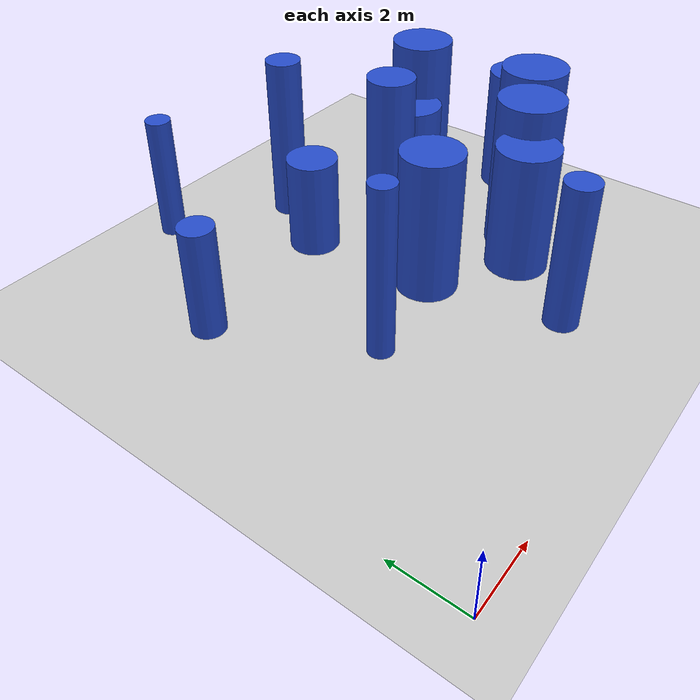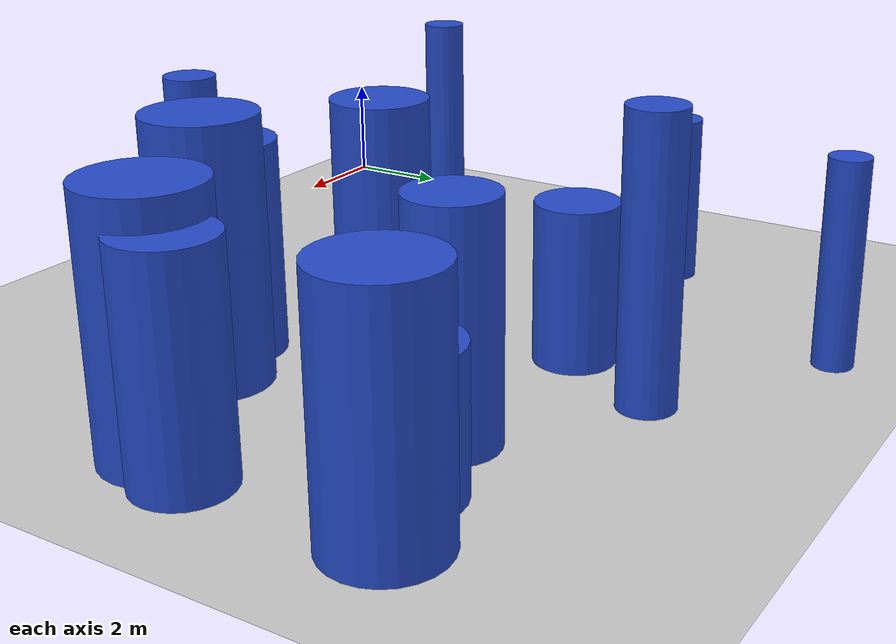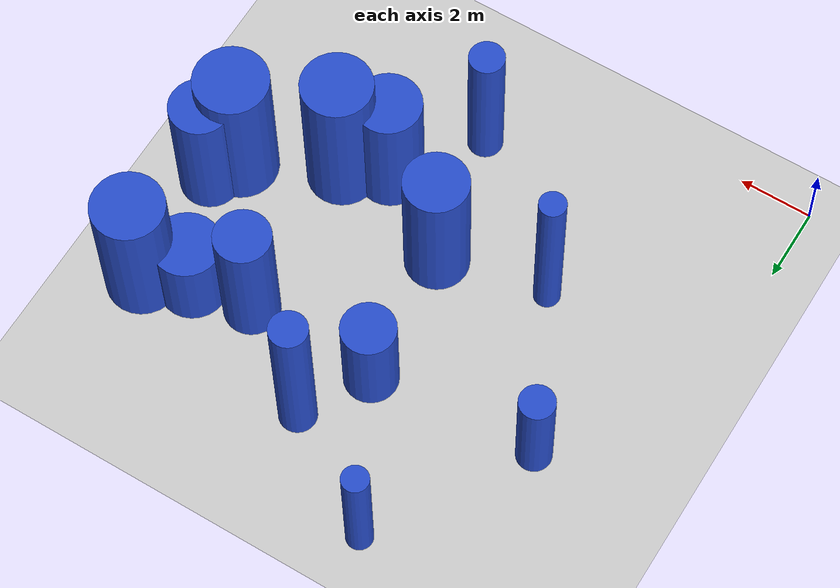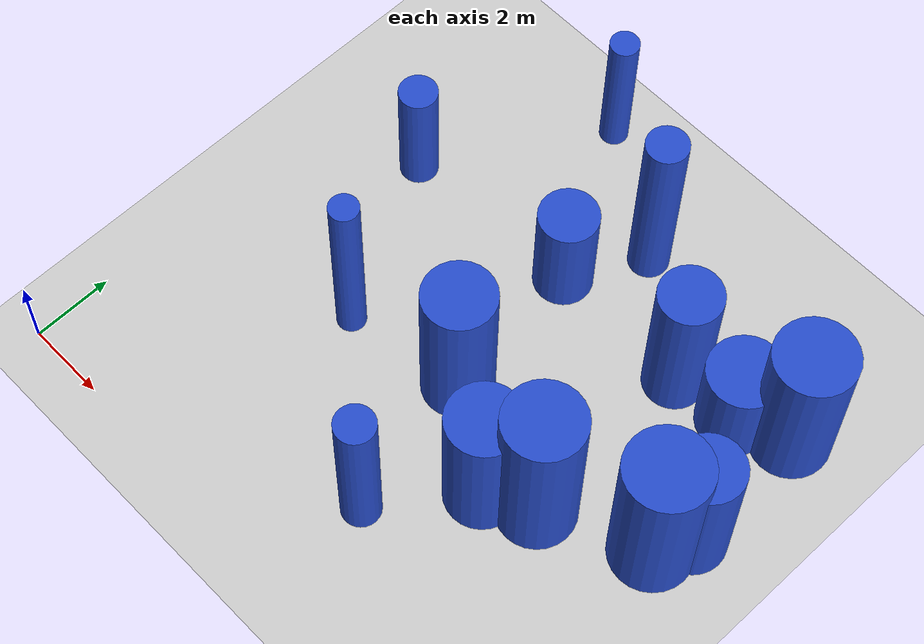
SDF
<sdf version="1.6">
 <world name="default">
  <model name="ground_plane">
   <static>1</static>
   <link name="link">
    <collision name="collision">
     <geometry><plane><normal>0 0 1</normal><size>100 100</size></plane></geometry>
     <surface><friction><ode><mu>100</mu><mu2>50</mu2></ode></friction></surface>
    </collision>
    <visual name="visual">
     <cast_shadows>0</cast_shadows>
     <geometry><plane><normal>0 0 1</normal><size>100 100</size></plane></geometry>
     <material>
      <script><uri>file://media/materials/scripts/gazebo.material</uri><name>Gazebo/Grey</name></script>
     </material>
    </visual>
   </link>
  </model>
  <model name="0">
   <static>0</static>
   <link name="link">
    <inertial>
     <mass>2</mass>
     <inertia><ixx>3.17312</ixx><ixy>0</ixy><ixz>0</ixz><iyy>3.17312</iyy><iyz>0</iyz><izz>0.73489</izz></inertia>
    </inertial>
    <collision name="collision">
     <geometry><cylinder><length>4.10293</length><radius>0.857257</radius></cylinder></geometry>
     <surface><contact><collide_without_contact>1</collide_without_contact></contact></surface>
    </collision>
    <visual name="visual">
     <geometry><cylinder><length>4.10293</length><radius>0.857257</radius></cylinder></geometry>
     <material>
      <script><uri>file://media/materials/scripts/gazebo.material</uri><name>Gazebo/Blue</name></script>
     </material>
    </visual>
    <gravity>0</gravity>
   </link>
   <pose>7.58804 6.08459 2.05146 0 -0 0</pose>
  </model>
  <model name="32">
   <static>0</static>
   <link name="link">
    <inertial>
     <mass>2</mass>
     <inertia><ixx>3.9654</ixx><ixy>0</ixy><ixz>0</ixz><iyy>3.9654</iyy><iyz>0</iyz><izz>0.125912</izz></inertia>
    </inertial>
    <collision name="collision">
     <geometry><cylinder><length>4.83887</length><radius>0.354841</radius></cylinder></geometry>
     <surface><contact><collide_without_contact>1</collide_without_contact></contact></surface>
    </collision>
    <visual name="visual">
     <geometry><cylinder><length>4.83887</length><radius>0.354841</radius></cylinder></geometry>
     <material>
      <script><uri>file://media/materials/scripts/gazebo.material</uri><name>Gazebo/Blue</name></script>
     </material>
    </visual>
    <gravity>0</gravity>
   </link>
   <pose>4.66651 5.49479 2.41944 0 -0 0</pose>
  </model>
  <model name="65">
   <static>0</static>
   <link name="link">
    <inertial>
     <mass>2</mass>
     <inertia><ixx>2.68412</ixx><ixy>0</ixy><ixz>0</ixz><iyy>2.68412</iyy><iyz>0</iyz><izz>0.778534</izz></inertia>
    </inertial>
    <collision name="collision">
     <geometry><cylinder><length>3.71067</length><radius>0.882346</radius></cylinder></geometry>
     <surface><contact><collide_without_contact>1</collide_without_contact></contact></surface>
    </collision>
    <visual name="visual">
     <geometry><cylinder><length>3.71067</length><radius>0.882346</radius></cylinder></geometry>
     <material>
      <script><uri>file://media/materials/scripts/gazebo.material</uri><name>Gazebo/Blue</name></script>
     </material>
    </visual>
    <gravity>0</gravity>
   </link>
   <pose>9.89569 4.60056 1.85534 0 -0 0</pose>
  </model>
  <model name="70">
   <static>0</static>
   <link name="link">
    <inertial>
     <mass>2</mass>
     <inertia><ixx>3.78775</ixx><ixy>0</ixy><ixz>0</ixz><iyy>3.78775</iyy><iyz>0</iyz><izz>0.890965</izz></inertia>
    </inertial>
    <collision name="collision">
     <geometry><cylinder><length>4.47813</length><radius>0.943909</radius></cylinder></geometry>
     <surface><contact><collide_without_contact>1</collide_without_contact></contact></surface>
    </collision>
    <visual name="visual">
     <geometry><cylinder><length>4.47813</length><radius>0.943909</radius></cylinder></geometry>
     <material>
      <script><uri>file://media/materials/scripts/gazebo.material</uri><name>Gazebo/Blue</name></script>
     </material>
    </visual>
    <gravity>0</gravity>
   </link>
   <pose>11.0126 5.18411 2.23906 0 -0 0</pose>
  </model>
  <model name="96">
   <static>0</static>
   <link name="link">
    <inertial>
     <mass>2</mass>
     <inertia><ixx>3.12972</ixx><ixy>0</ixy><ixz>0</ixz><iyy>3.12972</iyy><iyz>0</iyz><izz>0.918622</izz></inertia>
    </inertial>
    <collision name="collision">
     <geometry><cylinder><length>4.00281</length><radius>0.958448</radius></cylinder></geometry>
     <surface><contact><collide_without_contact>1</collide_without_contact></contact></surface>
    </collision>
    <visual name="visual">
     <geometry><cylinder><length>4.00281</length><radius>0.958448</radius></cylinder></geometry>
     <material>
      <script><uri>file://media/materials/scripts/gazebo.material</uri><name>Gazebo/Blue</name></script>
     </material>
    </visual>
    <gravity>0</gravity>
   </link>
   <pose>13.7137 10.487 2.0014 0 -0 0</pose>
  </model>
  <model name="100">
   <static>0</static>
   <link name="link">
    <inertial>
     <mass>2</mass>
     <inertia><ixx>3.05003</ixx><ixy>0</ixy><ixz>0</ixz><iyy>3.05003</iyy><iyz>0</iyz><izz>0.222899</izz></inertia>
    </inertial>
    <collision name="collision">
     <geometry><cylinder><length>4.19899</length><radius>0.472122</radius></cylinder></geometry>
     <surface><contact><collide_without_contact>1</collide_without_contact></contact></surface>
    </collision>
    <visual name="visual">
     <geometry><cylinder><length>4.19899</length><radius>0.472122</radius></cylinder></geometry>
     <material>
      <script><uri>file://media/materials/scripts/gazebo.material</uri><name>Gazebo/Blue</name></script>
     </material>
    </visual>
    <gravity>0</gravity>
   </link>
   <pose>8.32558 2.43405 2.09949 0 -0 0</pose>
  </model>
  <model name="102">
   <static>0</static>
   <link name="link">
    <inertial>
     <mass>2</mass>
     <inertia><ixx>3.49696</ixx><ixy>0</ixy><ixz>0</ixz><iyy>3.49696</iyy><iyz>0</iyz><izz>0.981406</izz></inertia>
    </inertial>
    <collision name="collision">
     <geometry><cylinder><length>4.24706</length><radius>0.99066</radius></cylinder></geometry>
     <surface><contact><collide_without_contact>1</collide_without_contact></contact></surface>
    </collision>
    <visual name="visual">
     <geometry><cylinder><length>4.24706</length><radius>0.99066</radius></cylinder></geometry>
     <material>
      <script><uri>file://media/materials/scripts/gazebo.material</uri><name>Gazebo/Blue</name></script>
     </material>
    </visual>
    <gravity>0</gravity>
   </link>
   <pose>13.4145 6.31929 2.12353 0 -0 0</pose>
  </model>
  <model name="128">
   <static>0</static>
   <link name="link">
    <inertial>
     <mass>2</mass>
     <inertia><ixx>2.24245</ixx><ixy>0</ixy><ixz>0</ixz><iyy>2.24245</iyy><iyz>0</iyz><izz>0.12581</izz></inertia>
    </inertial>
    <collision name="collision">
     <geometry><cylinder><length>3.61625</length><radius>0.354698</radius></cylinder></geometry>
     <surface><contact><collide_without_contact>1</collide_without_contact></contact></surface>
    </collision>
    <visual name="visual">
     <geometry><cylinder><length>3.61625</length><radius>0.354698</radius></cylinder></geometry>
     <material>
      <script><uri>file://media/materials/scripts/gazebo.material</uri><name>Gazebo/Blue</name></script>
     </material>
    </visual>
    <gravity>0</gravity>
   </link>
   <pose>5.24774 13.5813 1.80813 0 -0 0</pose>
  </model>
  <model name="134">
   <static>0</static>
   <link name="link">
    <inertial>
     <mass>2</mass>
     <inertia>
      <ixx>2.76564</ixx>
      <ixy>0</ixy>
      <ixz>0</ixz>
      <iyy>2.76564</iyy>
      <iyz>0</iyz>
      <izz>0.0823417</izz>
     </inertia>
    </inertial>
    <collision name="collision">
     <geometry><cylinder><length>4.04312</length><radius>0.286952</radius></cylinder></geometry>
     <surface><contact><collide_without_contact>1</collide_without_contact></contact></surface>
    </collision>
    <visual name="visual">
     <geometry><cylinder><length>4.04312</length><radius>0.286952</radius></cylinder></geometry>
     <material>
      <script><uri>file://media/materials/scripts/gazebo.material</uri><name>Gazebo/Blue</name></script>
     </material>
    </visual>
    <gravity>0</gravity>
   </link>
   <pose>8.13673 11.5728 2.02156 0 -0 0</pose>
  </model>
  <model name="142">
   <static>0</static>
   <link name="link">
    <inertial>
     <mass>2</mass>
     <inertia><ixx>1.31696</ixx><ixy>0</ixy><ixz>0</ixz><iyy>1.31696</iyy><iyz>0</iyz><izz>0.811578</izz></inertia>
    </inertial>
    <collision name="collision">
     <geometry><cylinder><length>2.33816</length><radius>0.900876</radius></cylinder></geometry>
     <surface><contact><collide_without_contact>1</collide_without_contact></contact></surface>
    </collision>
    <visual name="visual">
     <geometry><cylinder><length>2.33816</length><radius>0.900876</radius></cylinder></geometry>
     <material>
      <script><uri>file://media/materials/scripts/gazebo.material</uri><name>Gazebo/Blue</name></script>
     </material>
    </visual>
    <gravity>0</gravity>
   </link>
   <pose>12.5077 9.96442 1.16908 0 -0 0</pose>
  </model>
  <model name="176">
   <static>0</static>
   <link name="link">
    <inertial>
     <mass>2</mass>
     <inertia><ixx>2.66861</ixx><ixy>0</ixy><ixz>0</ixz><iyy>2.66861</iyy><iyz>0</iyz><izz>0.656205</izz></inertia>
    </inertial>
    <collision name="collision">
     <geometry><cylinder><length>3.7474</length><radius>0.810065</radius></cylinder></geometry>
     <surface><contact><collide_without_contact>1</collide_without_contact></contact></surface>
    </collision>
    <visual name="visual">
     <geometry><cylinder><length>3.7474</length><radius>0.810065</radius></cylinder></geometry>
     <material>
      <script><uri>file://media/materials/scripts/gazebo.material</uri><name>Gazebo/Blue</name></script>
     </material>
    </visual>
    <gravity>0</gravity>
   </link>
   <pose>13.8585 7.12105 1.8737 0 -0 0</pose>
  </model>
  <model name="216">
   <static>0</static>
   <link name="link">
    <inertial>
     <mass>2</mass>
     <inertia><ixx>1.55664</ixx><ixy>0</ixy><ixz>0</ixz><iyy>1.55664</iyy><iyz>0</iyz><izz>0.512471</izz></inertia>
    </inertial>
    <collision name="collision">
     <geometry><cylinder><length>2.79329</length><radius>0.715871</radius></cylinder></geometry>
     <surface><contact><collide_without_contact>1</collide_without_contact></contact></surface>
    </collision>
    <visual name="visual">
     <geometry><cylinder><length>2.79329</length><radius>0.715871</radius></cylinder></geometry>
     <material>
      <script><uri>file://media/materials/scripts/gazebo.material</uri><name>Gazebo/Blue</name></script>
     </material>
    </visual>
    <gravity>0</gravity>
   </link>
   <pose>7.27759 9.78099 1.39664 0 -0 0</pose>
  </model>
  <model name="230">
   <static>0</static>
   <link name="link">
    <inertial>
     <mass>2</mass>
     <inertia><ixx>2.84759</ixx><ixy>0</ixy><ixz>0</ixz><iyy>2.84759</iyy><iyz>0</iyz><izz>0.555509</izz></inertia>
    </inertial>
    <collision name="collision">
     <geometry><cylinder><length>3.9267</length><radius>0.745325</radius></cylinder></geometry>
     <surface><contact><collide_without_contact>1</collide_without_contact></contact></surface>
    </collision>
    <visual name="visual">
     <geometry><cylinder><length>3.9267</length><radius>0.745325</radius></cylinder></geometry>
     <material>
      <script><uri>file://media/materials/scripts/gazebo.material</uri><name>Gazebo/Blue</name></script>
     </material>
    </visual>
    <gravity>0</gravity>
   </link>
   <pose>10.8914 9.71009 1.96335 0 -0 0</pose>
  </model>
  <model name="237">
   <static>0</static>
   <link name="link">
    <inertial>
     <mass>2</mass>
     <inertia><ixx>1.73145</ixx><ixy>0</ixy><ixz>0</ixz><iyy>1.73145</iyy><iyz>0</iyz><izz>0.219115</izz></inertia>
    </inertial>
    <collision name="collision">
     <geometry><cylinder><length>3.11951</length><radius>0.468098</radius></cylinder></geometry>
     <surface><contact><collide_without_contact>1</collide_without_contact></contact></surface>
    </collision>
    <visual name="visual">
     <geometry><cylinder><length>3.11951</length><radius>0.468098</radius></cylinder></geometry>
     <material>
      <script><uri>file://media/materials/scripts/gazebo.material</uri><name>Gazebo/Blue</name></script>
     </material>
    </visual>
    <gravity>0</gravity>
   </link>
   <pose>2.70861 9.48537 1.55976 0 -0 0</pose>
  </model>
  <model name="238">
   <static>0</static>
   <link name="link">
    <inertial>
     <mass>2</mass>
     <inertia><ixx>4.05026</ixx><ixy>0</ixy><ixz>0</ixz><iyy>4.05026</iyy><iyz>0</iyz><izz>0.247757</izz></inertia>
    </inertial>
    <collision name="collision">
     <geometry><cylinder><length>4.85369</length><radius>0.497752</radius></cylinder></geometry>
     <surface><contact><collide_without_contact>1</collide_without_contact></contact></surface>
    </collision>
    <visual name="visual">
     <geometry><cylinder><length>4.85369</length><radius>0.497752</radius></cylinder></geometry>
     <material>
      <script><uri>file://media/materials/scripts/gazebo.material</uri><name>Gazebo/Blue</name></script>
     </material>
    </visual>
    <gravity>0</gravity>
   </link>
   <pose>8.29883 11.6 2.42685 0 -0 0</pose>
  </model>
 </world>
</sdf>
